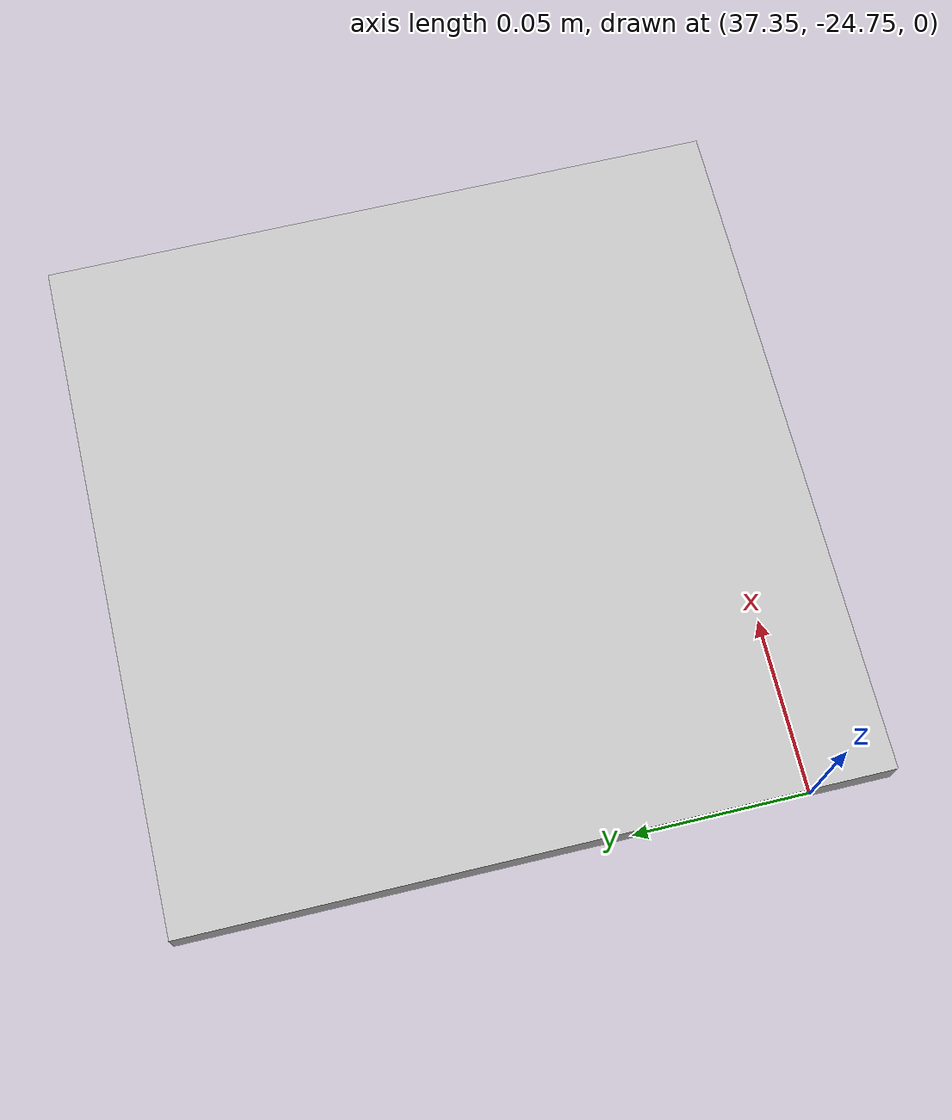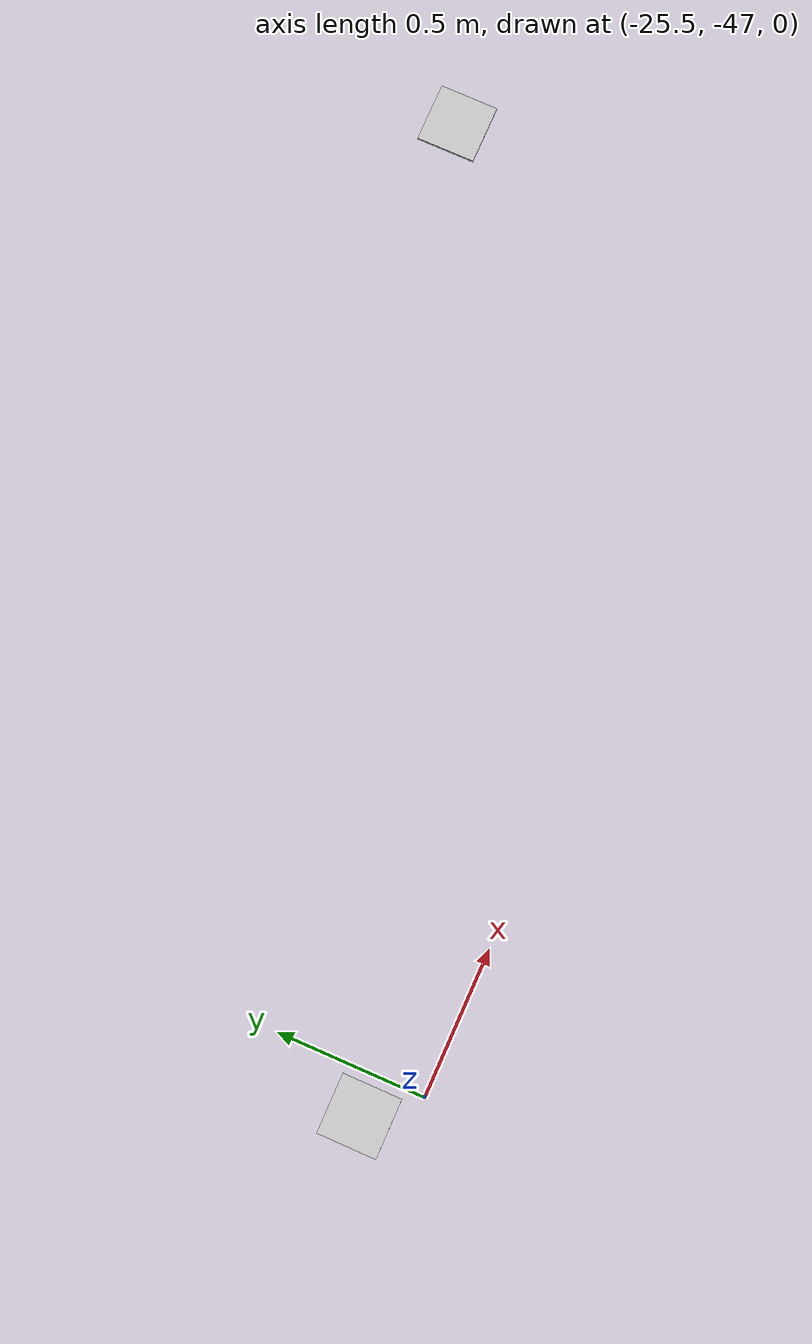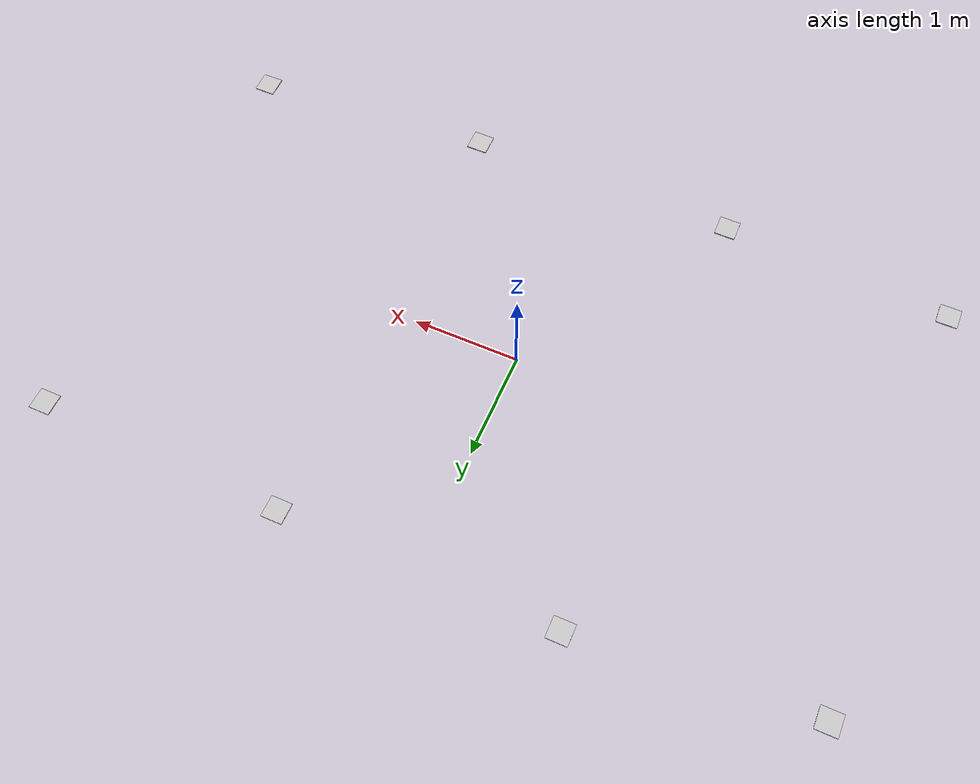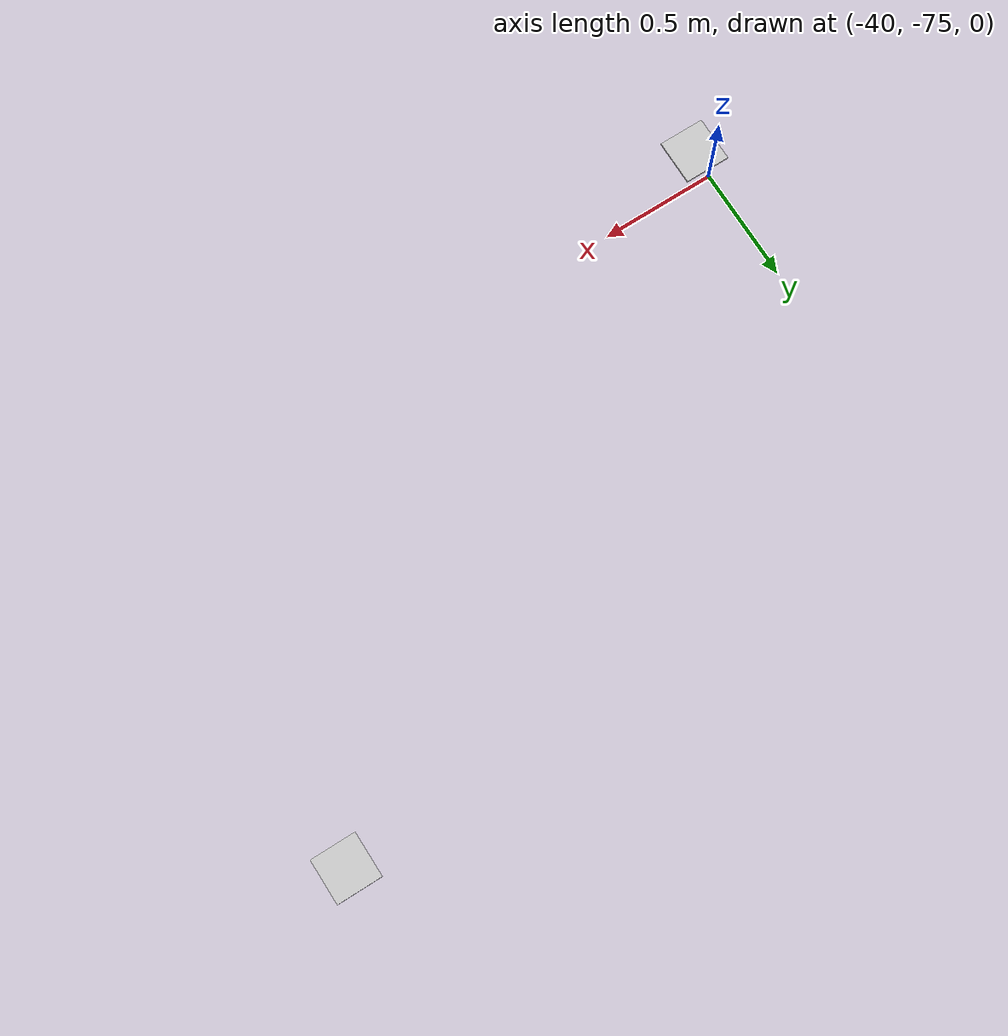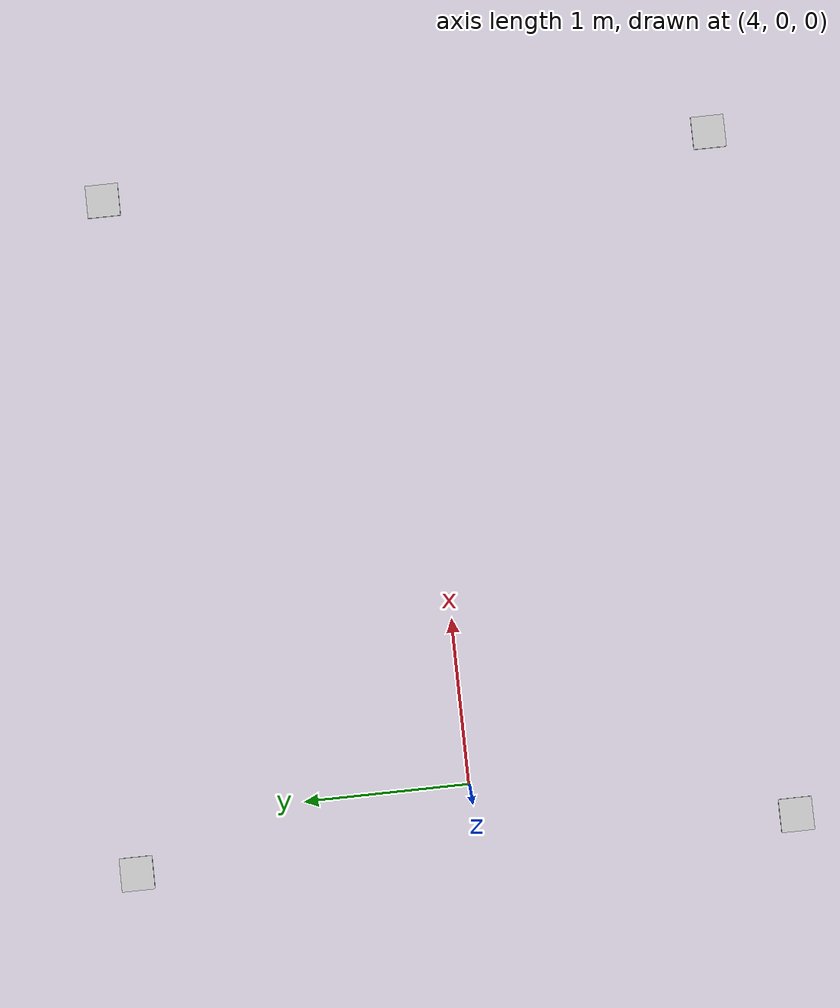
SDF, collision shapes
<?xml version='1.0' encoding='UTF-8'?>
<sdf version="1.4">
  <model name="some track">
    <include>
      <uri>model://cone_yellow</uri>
      <pose>12.516843423863225 -1.6713712307564512 0 0 0 0</pose>
      <name>cone_right</name>
    </include>
    <include>
      <uri>model://cone_yellow</uri>
      <pose>28.0405596716549 -4.432216275014408 0 0 0 0</pose>
      <name>cone_right</name>
    </include>
    <include>
      <uri>model://cone_yellow</uri>
      <pose>37.45023903543955 -24.673966389807806 0 0 0 0</pose>
      <name>cone_right</name>
    </include>
    <include>
      <uri>model://cone_yellow</uri>
      <pose>40.48895516666118 -32.21747728022316 0 0 0 0</pose>
      <name>cone_right</name>
    </include>
    <include>
      <uri>model://cone_yellow</uri>
      <pose>40.895348799305665 -39.850581786806856 0 0 0 0</pose>
      <name>cone_right</name>
    </include>
    <include>
      <uri>model://cone_yellow</uri>
      <pose>33.06399190476597 -52.63968449370735 0 0 0 0</pose>
      <name>cone_right</name>
    </include>
    <include>
      <uri>model://cone_yellow</uri>
      <pose>25.72440774446569 -53.79490819272131 0 0 0 0</pose>
      <name>cone_right</name>
    </include>
    <include>
      <uri>model://cone_yellow</uri>
      <pose>15.03106792246075 -43.899049404161104 0 0 0 0</pose>
      <name>cone_right</name>
    </include>
    <include>
      <uri>model://cone_yellow</uri>
      <pose>12.081464831715852 -36.481502144916604 0 0 0 0</pose>
      <name>cone_right</name>
    </include>
    <include>
      <uri>model://cone_yellow</uri>
      <pose>9.507099531776563 -28.674294349782013 0 0 0 0</pose>
      <name>cone_right</name>
    </include>
    <include>
      <uri>model://cone_yellow</uri>
      <pose>5.9266143419524635 -20.862813408733732 0 0 0 0</pose>
      <name>cone_right</name>
    </include>
    <include>
      <uri>model://cone_yellow</uri>
      <pose>-17.5268044461459 -13.651077382285374 0 0 0 0</pose>
      <name>cone_right</name>
    </include>
    <include>
      <uri>model://cone_yellow</uri>
      <pose>-23.667282704258007 -20.92872482887582 0 0 0 0</pose>
      <name>cone_right</name>
    </include>
    <include>
      <uri>model://cone_yellow</uri>
      <pose>-27.050038833788623 -29.40056646374258 0 0 0 0</pose>
      <name>cone_right</name>
    </include>
    <include>
      <uri>model://cone_yellow</uri>
      <pose>-27.716677560909538 -38.10630045436239 0 0 0 0</pose>
      <name>cone_right</name>
    </include>
    <include>
      <uri>model://cone_yellow</uri>
      <pose>-25.631397351571238 -46.835263657495176 0 0 0 0</pose>
      <name>cone_right</name>
    </include>
    <include>
      <uri>model://cone_yellow</uri>
      <pose>-20.516218553442688 -54.13755722478347 0 0 0 0</pose>
      <name>cone_right</name>
    </include>
    <include>
      <uri>model://cone_yellow</uri>
      <pose>-12.614439413484453 -58.43123342652209 0 0 0 0</pose>
      <name>cone_right</name>
    </include>
    <include>
      <uri>model://cone_yellow</uri>
      <pose>-4.06320817020115 -60.44553216208068 0 0 0 0</pose>
      <name>cone_right</name>
    </include>
    <include>
      <uri>model://cone_yellow</uri>
      <pose>2.610905185488329 -63.8024379960875 0 0 0 0</pose>
      <name>cone_right</name>
    </include>
    <include>
      <uri>model://cone_yellow</uri>
      <pose>6.517599336887555 -70.56468366825828 0 0 0 0</pose>
      <name>cone_right</name>
    </include>
    <include>
      <uri>model://cone_yellow</uri>
      <pose>6.590096737298881 -78.31514806590401 0 0 0 0</pose>
      <name>cone_right</name>
    </include>
    <include>
      <uri>model://cone_yellow</uri>
      <pose>2.480676152896148 -84.78576783317122 0 0 0 0</pose>
      <name>cone_right</name>
    </include>
    <include>
      <uri>model://cone_yellow</uri>
      <pose>-4.297952002645577 -89.06522155483509 0 0 0 0</pose>
      <name>cone_right</name>
    </include>
    <include>
      <uri>model://cone_yellow</uri>
      <pose>-11.949905566749111 -90.20230671301147 0 0 0 0</pose>
      <name>cone_right</name>
    </include>
    <include>
      <uri>model://cone_yellow</uri>
      <pose>-19.644912427267286 -88.64447080569015 0 0 0 0</pose>
      <name>cone_right</name>
    </include>
    <include>
      <uri>model://cone_yellow</uri>
      <pose>-26.68321549840365 -85.05093778355443 0 0 0 0</pose>
      <name>cone_right</name>
    </include>
    <include>
      <uri>model://cone_yellow</uri>
      <pose>-32.648757344087485 -79.8391332895992 0 0 0 0</pose>
      <name>cone_right</name>
    </include>
    <include>
      <uri>model://cone_yellow</uri>
      <pose>-37.27241873871004 -73.38177904648632 0 0 0 0</pose>
      <name>cone_right</name>
    </include>
    <include>
      <uri>model://cone_yellow</uri>
      <pose>-40.360644418275804 -66.07510110220556 0 0 0 0</pose>
      <name>cone_right</name>
    </include>
    <include>
      <uri>model://cone_yellow</uri>
      <pose>-42.171457341311736 -58.228303113910954 0 0 0 0</pose>
      <name>cone_right</name>
    </include>
    <include>
      <uri>model://cone_yellow</uri>
      <pose>-43.322774162440126 -50.18527832283136 0 0 0 0</pose>
      <name>cone_right</name>
    </include>
    <include>
      <uri>model://cone_yellow</uri>
      <pose>-44.32159458869028 -41.97987940445386 0 0 0 0</pose>
      <name>cone_right</name>
    </include>
    <include>
      <uri>model://cone_yellow</uri>
      <pose>-45.37643059894205 -33.474359575314985 0 0 0 0</pose>
      <name>cone_right</name>
    </include>
    <include>
      <uri>model://cone_yellow</uri>
      <pose>-45.29255359417304 -25.431615323974345 0 0 0 0</pose>
      <name>cone_right</name>
    </include>
    <include>
      <uri>model://cone_yellow</uri>
      <pose>-42.57145542083585 -18.6408723186059 0 0 0 0</pose>
      <name>cone_right</name>
    </include>
    <include>
      <uri>model://cone_yellow</uri>
      <pose>-37.26734632021005 -12.728442895864553 0 0 0 0</pose>
      <name>cone_right</name>
    </include>
    <include>
      <uri>model://cone_yellow</uri>
      <pose>-30.99688656389915 -7.5634103345634 0 0 0 0</pose>
      <name>cone_right</name>
    </include>
    <include>
      <uri>model://cone_yellow</uri>
      <pose>-24.016951483762366 -4.053399624552479 0 0 0 0</pose>
      <name>cone_right</name>
    </include>
    <include>
      <uri>model://cone_yellow</uri>
      <pose>-16.265409490688466 -2.36609231700728 0 0 0 0</pose>
      <name>cone_right</name>
    </include>
    <include>
      <uri>model://cone_yellow</uri>
      <pose>-8.227449584621382 -2.0168311638139316 0 0 0 0</pose>
      <name>cone_right</name>
    </include>
    <include>
      <uri>model://cone_yellow</uri>
      <pose>-3.485632831516689 -2.0053423808464643 0 0 0 0</pose>
      <name>cone_right</name>
    </include>
    <include>
      <uri>model://cone_yellow</uri>
      <pose>3.613692904799617 -1.9405083558572755 0 0 0 0</pose>
      <name>cone_right</name>
    </include>
    <include>
      <uri>model://cone_yellow</uri>
      <pose>7.795487516602375 -1.8756743308680868 0 0 0 0</pose>
      <name>cone_right</name>
    </include>
    <include>
      <uri>model://cone_yellow</uri>
      <pose>23.30460388048538 -2.9063717794439583 0 0 0 0</pose>
      <name>cone_right</name>
    </include>
    <include>
      <uri>model://cone_yellow</uri>
      <pose>18.633995062356256 -1.9230857124694083 0 0 0 0</pose>
      <name>cone_right</name>
    </include>
    <include>
      <uri>model://cone_yellow</uri>
      <pose>31.564206843071627 -7.232830474131994 0 0 0 0</pose>
      <name>cone_right</name>
    </include>
    <include>
      <uri>model://cone_yellow</uri>
      <pose>33.03913594353346 -11.41179625877384 0 0 0 0</pose>
      <name>cone_right</name>
    </include>
    <include>
      <uri>model://cone_yellow</uri>
      <pose>22.145464735609494 -52.21414715829949 0 0 0 0</pose>
      <name>cone_right</name>
    </include>
    <include>
      <uri>model://cone_yellow</uri>
      <pose>18.61442193230522 -48.48962255755388 0 0 0 0</pose>
      <name>cone_right</name>
    </include>
    <include>
      <uri>model://cone_yellow</uri>
      <pose>-4.845246007456041 -11.196006100737499 0 0 0 0</pose>
      <name>cone_right</name>
    </include>
    <include>
      <uri>model://cone_yellow</uri>
      <pose>-10.649699930695945 -10.760672056494514 0 0 0 0</pose>
      <name>cone_right</name>
    </include>
    <include>
      <uri>model://cone_yellow</uri>
      <pose>3.0875076876384853 -15.93631013805009 0 0 0 0</pose>
      <name>cone_right</name>
    </include>
    <include>
      <uri>model://cone_yellow</uri>
      <pose>-0.44353511566578163 -12.985712727069803 0 0 0 0</pose>
      <name>cone_right</name>
    </include>
    <include>
      <uri>model://cone_yellow</uri>
      <pose>29.93310708262303 -53.5685197403888 0 0 0 0</pose>
      <name>cone_right</name>
    </include>
    <include>
      <uri>model://cone_yellow</uri>
      <pose>39.8490492014912 -44.23302301384462 0 0 0 0</pose>
      <name>cone_right</name>
    </include>
    <include>
      <uri>model://cone_yellow</uri>
      <pose>38.397935720681225 -48.00591806395055 0 0 0 0</pose>
      <name>cone_right</name>
    </include>
    <include>
      <uri>model://cone_yellow</uri>
      <pose>36.221265499466256 -50.811404126849844 0 0 0 0</pose>
      <name>cone_right</name>
    </include>
    <include>
      <uri>model://cone_yellow</uri>
      <pose>34.52829977185463 -17.2906827201394 0 0 0 0</pose>
      <name>cone_right</name>
    </include>
    <include>
      <uri>model://cone_blue</uri>
      <pose>12.285008780560513 1.5703494077570996 0 0 0 0</pose>
      <name>cone_left</name>
    </include>
    <include>
      <uri>model://cone_blue</uri>
      <pose>29.162003238267584 -1.3818287050648081 0 0 0 0</pose>
      <name>cone_left</name>
    </include>
    <include>
      <uri>model://cone_blue</uri>
      <pose>37.53073392708712 -16.105481821458973 0 0 0 0</pose>
      <name>cone_left</name>
    </include>
    <include>
      <uri>model://cone_blue</uri>
      <pose>40.405641543256195 -23.32189537954572 0 0 0 0</pose>
      <name>cone_left</name>
    </include>
    <include>
      <uri>model://cone_blue</uri>
      <pose>43.55660271253374 -31.14414670006526 0 0 0 0</pose>
      <name>cone_left</name>
    </include>
    <include>
      <uri>model://cone_blue</uri>
      <pose>44.14311492600274 -39.971060773684485 0 0 0 0</pose>
      <name>cone_left</name>
    </include>
    <include>
      <uri>model://cone_blue</uri>
      <pose>35.04752195709253 -55.21419581267982 0 0 0 0</pose>
      <name>cone_left</name>
    </include>
    <include>
      <uri>model://cone_blue</uri>
      <pose>25.806050497360953 -57.043882563334236 0 0 0 0</pose>
      <name>cone_left</name>
    </include>
    <include>
      <uri>model://cone_blue</uri>
      <pose>12.221518428476 -45.53273592269825 0 0 0 0</pose>
      <name>cone_left</name>
    </include>
    <include>
      <uri>model://cone_blue</uri>
      <pose>9.022062701555587 -37.57811447658666 0 0 0 0</pose>
      <name>cone_left</name>
    </include>
    <include>
      <uri>model://cone_blue</uri>
      <pose>6.426264425221602 -29.70916392911 0 0 0 0</pose>
      <name>cone_left</name>
    </include>
    <include>
      <uri>model://cone_blue</uri>
      <pose>3.0486375354061366 -22.372697344995526 0 0 0 0</pose>
      <name>cone_left</name>
    </include>
    <include>
      <uri>model://cone_blue</uri>
      <pose>-15.944874904770272 -16.490091106472544 0 0 0 0</pose>
      <name>cone_left</name>
    </include>
    <include>
      <uri>model://cone_blue</uri>
      <pose>-20.976216299374308 -22.750993086983367 0 0 0 0</pose>
      <name>cone_left</name>
    </include>
    <include>
      <uri>model://cone_blue</uri>
      <pose>-23.94839496019323 -30.371290565322514 0 0 0 0</pose>
      <name>cone_left</name>
    </include>
    <include>
      <uri>model://cone_blue</uri>
      <pose>-24.466741752491075 -38.085873972545365 0 0 0 0</pose>
      <name>cone_left</name>
    </include>
    <include>
      <uri>model://cone_blue</uri>
      <pose>-22.544202614688245 -45.81952321005697 0 0 0 0</pose>
      <name>cone_left</name>
    </include>
    <include>
      <uri>model://cone_blue</uri>
      <pose>-18.104471339302567 -51.95903126095211 0 0 0 0</pose>
      <name>cone_left</name>
    </include>
    <include>
      <uri>model://cone_blue</uri>
      <pose>-11.374278329352565 -55.42715278755701 0 0 0 0</pose>
      <name>cone_left</name>
    </include>
    <include>
      <uri>model://cone_blue</uri>
      <pose>-3.4058200622113137 -57.262712519770815 0 0 0 0</pose>
      <name>cone_left</name>
    </include>
    <include>
      <uri>model://cone_blue</uri>
      <pose>4.453698168596443 -61.125384761389405 0 0 0 0</pose>
      <name>cone_left</name>
    </include>
    <include>
      <uri>model://cone_blue</uri>
      <pose>9.49080614163727 -69.25222746091649 0 0 0 0</pose>
      <name>cone_left</name>
    </include>
    <include>
      <uri>model://cone_blue</uri>
      <pose>9.815824748387778 -78.71160588014969 0 0 0 0</pose>
      <name>cone_left</name>
    </include>
    <include>
      <uri>model://cone_blue</uri>
      <pose>5.018683494571625 -86.81579707768996 0 0 0 0</pose>
      <name>cone_left</name>
    </include>
    <include>
      <uri>model://cone_blue</uri>
      <pose>-2.8306745781081197 -91.96515206425127 0 0 0 0</pose>
      <name>cone_left</name>
    </include>
    <include>
      <uri>model://cone_blue</uri>
      <pose>-11.767916964965588 -93.44720735075384 0 0 0 0</pose>
      <name>cone_left</name>
    </include>
    <include>
      <uri>model://cone_blue</uri>
      <pose>-20.509880731108304 -91.77725388680993 0 0 0 0</pose>
      <name>cone_left</name>
    </include>
    <include>
      <uri>model://cone_blue</uri>
      <pose>-28.333350257227824 -87.8508583677354 0 0 0 0</pose>
      <name>cone_left</name>
    </include>
    <include>
      <uri>model://cone_blue</uri>
      <pose>-34.92183075347282 -82.16198439880645 0 0 0 0</pose>
      <name>cone_left</name>
    </include>
    <include>
      <uri>model://cone_blue</uri>
      <pose>-40.01262941791959 -75.12927595164692 0 0 0 0</pose>
      <name>cone_left</name>
    </include>
    <include>
      <uri>model://cone_blue</uri>
      <pose>-43.415321679441625 -67.18480684253336 0 0 0 0</pose>
      <name>cone_left</name>
    </include>
    <include>
      <uri>model://cone_blue</uri>
      <pose>-45.35930445286658 -58.860862038716704 0 0 0 0</pose>
      <name>cone_left</name>
    </include>
    <include>
      <uri>model://cone_blue</uri>
      <pose>-46.54496480284992 -50.609527632619326 0 0 0 0</pose>
      <name>cone_left</name>
    </include>
    <include>
      <uri>model://cone_blue</uri>
      <pose>-47.547507669050525 -42.37482851251803 0 0 0 0</pose>
      <name>cone_left</name>
    </include>
    <include>
      <uri>model://cone_blue</uri>
      <pose>-48.60485462580512 -33.84822894123473 0 0 0 0</pose>
      <name>cone_left</name>
    </include>
    <include>
      <uri>model://cone_blue</uri>
      <pose>-48.534452862479554 -25.202292115044852 0 0 0 0</pose>
      <name>cone_left</name>
    </include>
    <include>
      <uri>model://cone_blue</uri>
      <pose>-45.44212004785772 -17.11713198667089 0 0 0 0</pose>
      <name>cone_left</name>
    </include>
    <include>
      <uri>model://cone_blue</uri>
      <pose>-39.57518512093958 -10.440129090931471 0 0 0 0</pose>
      <name>cone_left</name>
    </include>
    <include>
      <uri>model://cone_blue</uri>
      <pose>-32.968919055899924 -4.980081503289069 0 0 0 0</pose>
      <name>cone_left</name>
    </include>
    <include>
      <uri>model://cone_blue</uri>
      <pose>-25.283117220144167 -1.060186580345178 0 0 0 0</pose>
      <name>cone_left</name>
    </include>
    <include>
      <uri>model://cone_blue</uri>
      <pose>-16.786481103446068 0.8418641001496289 0 0 0 0</pose>
      <name>cone_left</name>
    </include>
    <include>
      <uri>model://cone_blue</uri>
      <pose>-8.295394726342565 1.2324585212890276 0 0 0 0</pose>
      <name>cone_left</name>
    </include>
    <include>
      <uri>model://cone_blue</uri>
      <pose>7.76307050410778 1.8522821060103425 0 0 0 0</pose>
      <name>cone_left</name>
    </include>
    <include>
      <uri>model://cone_blue</uri>
      <pose>3.6785269297888092 2.046784180977916 0 0 0 0</pose>
      <name>cone_left</name>
    </include>
    <include>
      <uri>model://cone_blue</uri>
      <pose>-3.485632831516689 1.949533143494122 0 0 0 0</pose>
      <name>cone_left</name>
    </include>
    <include>
      <uri>model://cone_blue</uri>
      <pose>24.287889947459934 0.6826223650131595 0 0 0 0</pose>
      <name>cone_left</name>
    </include>
    <include>
      <uri>model://cone_blue</uri>
      <pose>18.879816579099895 1.7150727353364417 0 0 0 0</pose>
      <name>cone_left</name>
    </include>
    <include>
      <uri>model://cone_blue</uri>
      <pose>34.366572133949106 -4.774615306695608 0 0 0 0</pose>
      <name>cone_left</name>
    </include>
    <include>
      <uri>model://cone_blue</uri>
      <pose>36.33314426789821 -9.592717034870923 0 0 0 0</pose>
      <name>cone_left</name>
    </include>
    <include>
      <uri>model://cone_blue</uri>
      <pose>20.50086945735819 -55.7935604109641 0 0 0 0</pose>
      <name>cone_left</name>
    </include>
    <include>
      <uri>model://cone_blue</uri>
      <pose>16.389381261729923 -51.58533131661516 0 0 0 0</pose>
      <name>cone_left</name>
    </include>
    <include>
      <uri>model://cone_blue</uri>
      <pose>-6.006136792104023 -14.678678454681446 0 0 0 0</pose>
      <name>cone_left</name>
    </include>
    <include>
      <uri>model://cone_blue</uri>
      <pose>-10.407847683894282 -14.48519665724011 0 0 0 0</pose>
      <name>cone_left</name>
    </include>
    <include>
      <uri>model://cone_blue</uri>
      <pose>0.4755034221805303 -18.59668485286838 0 0 0 0</pose>
      <name>cone_left</name>
    </include>
    <include>
      <uri>model://cone_blue</uri>
      <pose>-2.378353090079088 -16.274903283572414 0 0 0 0</pose>
      <name>cone_left</name>
    </include>
    <include>
      <uri>model://cone_blue</uri>
      <pose>30.70703427238835 -56.76096939817074 0 0 0 0</pose>
      <name>cone_left</name>
    </include>
    <include>
      <uri>model://cone_blue</uri>
      <pose>42.94475796055248 -45.732506944014936 0 0 0 0</pose>
      <name>cone_left</name>
    </include>
    <include>
      <uri>model://cone_blue</uri>
      <pose>41.155051334220175 -49.74725424092252 0 0 0 0</pose>
      <name>cone_left</name>
    </include>
    <include>
      <uri>model://cone_blue</uri>
      <pose>38.688158416843216 -52.74622210126315 0 0 0 0</pose>
      <name>cone_left</name>
    </include>
    <include>
      <uri>model://cone_orange_big</uri>
      <pose>-1.3 2.125 0 0 0 0</pose>
      <name>cone_orange_big</name>
    </include>
    <include>
      <uri>model://cone_orange_big</uri>
      <pose>-1.3 -2.125 0 0 0 0</pose>
      <name>cone_orange_big</name>
    </include>
    <include>
      <uri>model://cone_orange_big</uri>
      <pose>1.3 2.125 0 0 0 0</pose>
      <name>cone_orange_big</name>
    </include>
    <include>
      <uri>model://cone_orange_big</uri>
      <pose>1.3 -2.125 0 0 0 0</pose>
      <name>cone_orange_big</name>
    </include>
  </model>
</sdf>

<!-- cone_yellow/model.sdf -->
<sdf version='1.4'>
  <model name="cone_yellow">
    <link name="link">
    <collision name="collision"><geometry><box><size> 0.2 0.2 0.01</size>
             </box></geometry></collision>
      <visual name="visual">
        <geometry>
          <mesh>
            <uri>model://YellowCone.dae</uri>
            <scale>1 1 1</scale>
          </mesh>
        </geometry>
        <material>
            <script>
              <uri>model://cone_yellow/materials/scripts</uri>
              <uri>model://cone_yellow/materials/textures</uri>
              <name>cone_yellow/Image</name>
            </script>
        </material>
      </visual>
    </link>
  </model>
</sdf>

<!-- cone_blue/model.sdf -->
<sdf version='1.4'>
  <model name="cone_blue">
    <link name="link">
    <collision name="collision"><geometry><box><size> 0.2 0.2 0.01</size>
             </box></geometry></collision>
      <visual name="visual">
        <geometry>
          <mesh>
            <uri>model://BlueCone.dae</uri>
            <scale>1 1 1</scale>
          </mesh>
        </geometry>
        <material>
            <script>
              <uri>model://cone_blue/materials/scripts</uri>
              <uri>model://cone_blue/materials/textures</uri>
              <name>cone_blue/Image</name>
            </script>
        </material>
      </visual>
    </link>
  </model>
</sdf>

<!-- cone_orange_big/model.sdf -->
<sdf version='1.4'>
  <model name="cone_orange_big">
    <link name="link">
    <collision name="collision"><geometry><box><size> 0.2 0.2 0.01</size>
             </box></geometry></collision>
      <visual name="visual">
        <geometry>
          <mesh>
            <uri>model://BigOrangeCone.dae</uri>
            <scale>1 1 1</scale>
          </mesh>
        </geometry>
        <material>
            <script>
              <uri>model://cone_orange_big/materials/scripts</uri>
              <uri>model://cone_orange_big/materials/textures</uri>
              <name>cone_orange_big/Image</name>
            </script>
        </material>
      </visual>
    </link>
  </model>
</sdf>
